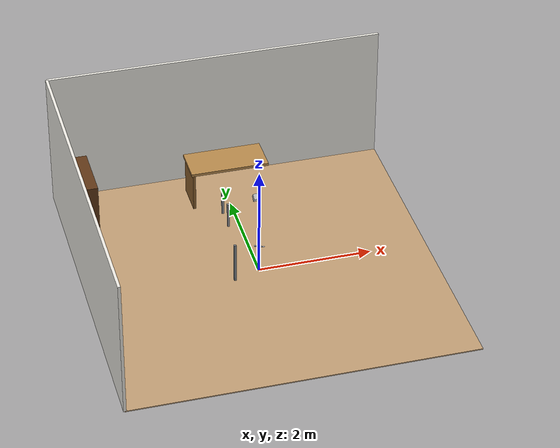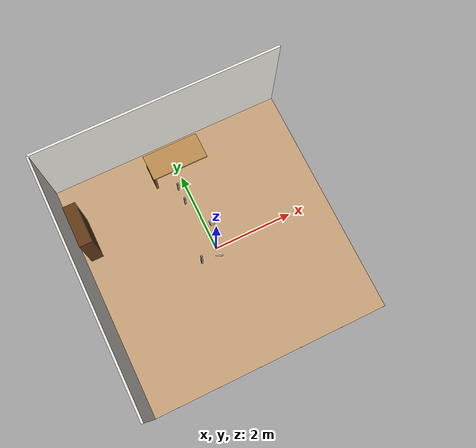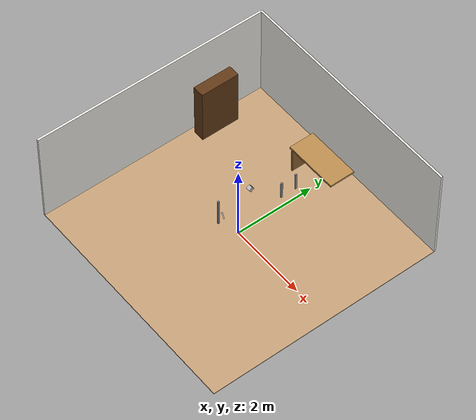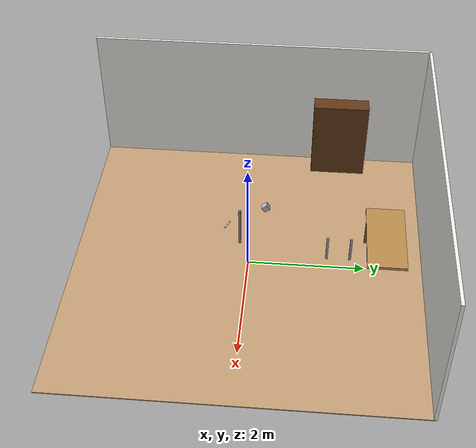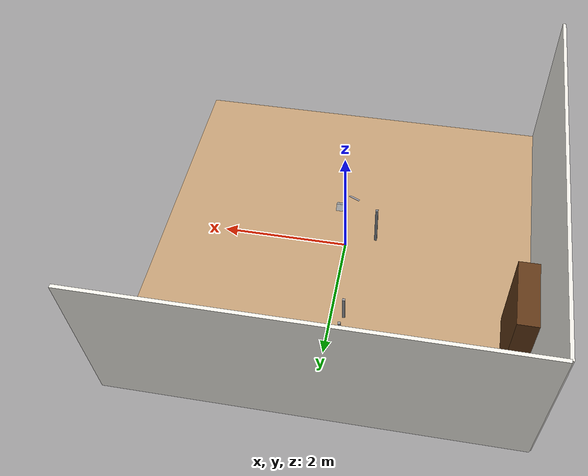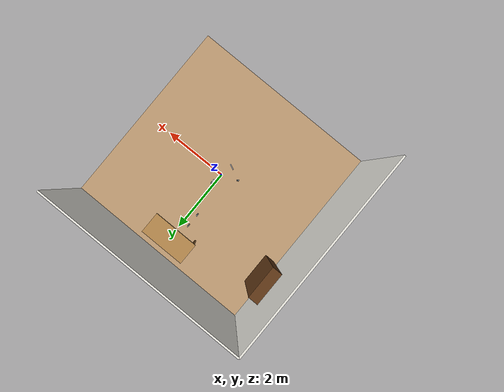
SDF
<sdf version="1.10">
 <world name="bps_room">
  <model name="floor">
   <static>true</static>
   <link name="link">
    <collision name="collision"><geometry><box><size>6 6 0.02</size></box></geometry></collision>
    <visual name="visual">
     <geometry><box><size>6 6 0.02</size></box></geometry>
     <material>
      <ambient>0.75999999 0.620000005 0.460000008 1</ambient>
      <diffuse>0.75999999 0.620000005 0.460000008 1</diffuse>
     </material>
    </visual>
    <inertial>
     <mass>1</mass>
     <inertia><ixx>1</ixx><ixy>0</ixy><ixz>0</ixz><iyy>1</iyy><iyz>0</iyz><izz>1</izz></inertia>
    </inertial>
   </link>
  </model>
  <model name="wall_north">
   <static>true</static>
   <pose>0 3 1.25 0 0 0</pose>
   <link name="link">
    <collision name="collision">
     <geometry><box><size>6 0.050000000000000003 2.5</size></box></geometry>
    </collision>
    <visual name="visual">
     <geometry><box><size>6 0.050000000000000003 2.5</size></box></geometry>
     <material>
      <ambient>0.949999988 0.939999998 0.910000026 1</ambient>
      <diffuse>0.949999988 0.939999998 0.910000026 1</diffuse>
     </material>
    </visual>
    <inertial>
     <mass>1</mass>
     <inertia><ixx>1</ixx><ixy>0</ixy><ixz>0</ixz><iyy>1</iyy><iyz>0</iyz><izz>1</izz></inertia>
    </inertial>
   </link>
  </model>
  <model name="wall_west">
   <static>true</static>
   <pose>-3 0 1.25 0 0 0</pose>
   <link name="link">
    <collision name="collision">
     <geometry><box><size>0.050000000000000003 6 2.5</size></box></geometry>
    </collision>
    <visual name="visual">
     <geometry><box><size>0.050000000000000003 6 2.5</size></box></geometry>
     <material>
      <ambient>0.930000007 0.920000017 0.889999986 1</ambient>
      <diffuse>0.930000007 0.920000017 0.889999986 1</diffuse>
     </material>
    </visual>
    <inertial>
     <mass>1</mass>
     <inertia><ixx>1</ixx><ixy>0</ixy><ixz>0</ixz><iyy>1</iyy><iyz>0</iyz><izz>1</izz></inertia>
    </inertial>
   </link>
  </model>
  <model name="bookshelf_body">
   <static>true</static>
   <pose>-2.7000000000000002 1.5 0.75 0 0 0</pose>
   <link name="link">
    <collision name="collision"><geometry><box><size>0.29999999999999999 1 1.5</size></box></geometry></collision>
    <visual name="visual">
     <geometry><box><size>0.29999999999999999 1 1.5</size></box></geometry>
     <material>
      <ambient>0.379999995 0.219999999 0.0900000036 1</ambient>
      <diffuse>0.379999995 0.219999999 0.0900000036 1</diffuse>
     </material>
    </visual>
    <inertial>
     <mass>1</mass>
     <inertia><ixx>1</ixx><ixy>0</ixy><ixz>0</ixz><iyy>1</iyy><iyz>0</iyz><izz>1</izz></inertia>
    </inertial>
   </link>
  </model>
  <model name="shelf_1">
   <static>true</static>
   <pose>-2.7000000000000002 1.5 0.40000000000000002 0 0 0</pose>
   <link name="link">
    <collision name="collision">
     <geometry><box><size>0.28000000000000003 0.94999999999999996 0.02</size></box></geometry>
    </collision>
    <visual name="visual">
     <geometry><box><size>0.28000000000000003 0.94999999999999996 0.02</size></box></geometry>
     <material>
      <ambient>0.5 0.319999993 0.140000001 1</ambient>
      <diffuse>0.5 0.319999993 0.140000001 1</diffuse>
     </material>
    </visual>
    <inertial>
     <mass>1</mass>
     <inertia><ixx>1</ixx><ixy>0</ixy><ixz>0</ixz><iyy>1</iyy><iyz>0</iyz><izz>1</izz></inertia>
    </inertial>
   </link>
  </model>
  <model name="shelf_2">
   <static>true</static>
   <pose>-2.7000000000000002 1.5 0.84999999999999998 0 0 0</pose>
   <link name="link">
    <collision name="collision">
     <geometry><box><size>0.28000000000000003 0.94999999999999996 0.02</size></box></geometry>
    </collision>
    <visual name="visual">
     <geometry><box><size>0.28000000000000003 0.94999999999999996 0.02</size></box></geometry>
     <material>
      <ambient>0.5 0.319999993 0.140000001 1</ambient>
      <diffuse>0.5 0.319999993 0.140000001 1</diffuse>
     </material>
    </visual>
    <inertial>
     <mass>1</mass>
     <inertia><ixx>1</ixx><ixy>0</ixy><ixz>0</ixz><iyy>1</iyy><iyz>0</iyz><izz>1</izz></inertia>
    </inertial>
   </link>
  </model>
  <model name="shelf_3">
   <static>true</static>
   <pose>-2.7000000000000002 1.5 1.25 0 0 0</pose>
   <link name="link">
    <collision name="collision">
     <geometry><box><size>0.28000000000000003 0.94999999999999996 0.02</size></box></geometry>
    </collision>
    <visual name="visual">
     <geometry><box><size>0.28000000000000003 0.94999999999999996 0.02</size></box></geometry>
     <material>
      <ambient>0.5 0.319999993 0.140000001 1</ambient>
      <diffuse>0.5 0.319999993 0.140000001 1</diffuse>
     </material>
    </visual>
    <inertial>
     <mass>1</mass>
     <inertia><ixx>1</ixx><ixy>0</ixy><ixz>0</ixz><iyy>1</iyy><iyz>0</iyz><izz>1</izz></inertia>
    </inertial>
   </link>
  </model>
  <model name="books_row1">
   <static>true</static>
   <pose>-2.6200000000000001 1.5 0.62 0 0 0</pose>
   <link name="link">
    <visual name="visual">
     <geometry><box><size>0.040000000000000001 0.80000000000000004 0.20000000000000001</size></box></geometry>
     <material>
      <ambient>0.779999971 0.180000007 0.180000007 1</ambient>
      <diffuse>0.779999971 0.180000007 0.180000007 1</diffuse>
     </material>
    </visual>
    <inertial>
     <mass>1</mass>
     <inertia><ixx>1</ixx><ixy>0</ixy><ixz>0</ixz><iyy>1</iyy><iyz>0</iyz><izz>1</izz></inertia>
    </inertial>
   </link>
  </model>
  <model name="books_row2">
   <static>true</static>
   <pose>-2.6200000000000001 1.5 1.0600000000000001 0 0 0</pose>
   <link name="link">
    <visual name="visual">
     <geometry><box><size>0.040000000000000001 0.69999999999999996 0.17999999999999999</size></box></geometry>
     <material>
      <ambient>0.180000007 0.319999993 0.720000029 1</ambient>
      <diffuse>0.180000007 0.319999993 0.720000029 1</diffuse>
     </material>
    </visual>
    <inertial>
     <mass>1</mass>
     <inertia><ixx>1</ixx><ixy>0</ixy><ixz>0</ixz><iyy>1</iyy><iyz>0</iyz><izz>1</izz></inertia>
    </inertial>
   </link>
  </model>
  <model name="desk">
   <static>true</static>
   <pose>0 2.2999999999999998 0.75 0 0 0</pose>
   <link name="link">
    <collision name="collision">
     <geometry><box><size>1.3999999999999999 0.65000000000000002 0.050000000000000003</size></box></geometry>
    </collision>
    <visual name="visual">
     <geometry><box><size>1.3999999999999999 0.65000000000000002 0.050000000000000003</size></box></geometry>
     <material>
      <ambient>0.720000029 0.540000021 0.300000012 1</ambient>
      <diffuse>0.720000029 0.540000021 0.300000012 1</diffuse>
     </material>
    </visual>
    <inertial>
     <mass>1</mass>
     <inertia><ixx>1</ixx><ixy>0</ixy><ixz>0</ixz><iyy>1</iyy><iyz>0</iyz><izz>1</izz></inertia>
    </inertial>
   </link>
  </model>
  <model name="desk_leg_left">
   <static>true</static>
   <pose>-0.65000000000000002 2.2999999999999998 0.375 0 0 0</pose>
   <link name="link">
    <collision name="collision">
     <geometry><box><size>0.050000000000000003 0.59999999999999998 0.75</size></box></geometry>
    </collision>
    <visual name="visual">
     <geometry><box><size>0.050000000000000003 0.59999999999999998 0.75</size></box></geometry>
     <material>
      <ambient>0.550000012 0.379999995 0.180000007 1</ambient>
      <diffuse>0.550000012 0.379999995 0.180000007 1</diffuse>
     </material>
    </visual>
    <inertial>
     <mass>1</mass>
     <inertia><ixx>1</ixx><ixy>0</ixy><ixz>0</ixz><iyy>1</iyy><iyz>0</iyz><izz>1</izz></inertia>
    </inertial>
   </link>
  </model>
  <model name="chair_leg_fl">
   <static>true</static>
   <pose>-0.20000000000000001 1.3500000000000001 0.23999999999999999 0 0 0</pose>
   <link name="link">
    <collision name="collision">
     <geometry><box><size>0.040000000000000001 0.040000000000000001 0.47999999999999998</size></box></geometry>
    </collision>
    <visual name="visual">
     <geometry><box><size>0.040000000000000001 0.040000000000000001 0.47999999999999998</size></box></geometry>
     <material>
      <ambient>0.600000024 0.600000024 0.620000005 1</ambient>
      <diffuse>0.600000024 0.600000024 0.620000005 1</diffuse>
     </material>
    </visual>
    <inertial>
     <mass>1</mass>
     <inertia><ixx>1</ixx><ixy>0</ixy><ixz>0</ixz><iyy>1</iyy><iyz>0</iyz><izz>1</izz></inertia>
    </inertial>
   </link>
  </model>
  <model name="chair_leg_bl">
   <static>true</static>
   <pose>-0.20000000000000001 1.75 0.23999999999999999 0 0 0</pose>
   <link name="link">
    <collision name="collision">
     <geometry><box><size>0.040000000000000001 0.040000000000000001 0.47999999999999998</size></box></geometry>
    </collision>
    <visual name="visual">
     <geometry><box><size>0.040000000000000001 0.040000000000000001 0.47999999999999998</size></box></geometry>
     <material>
      <ambient>0.600000024 0.600000024 0.620000005 1</ambient>
      <diffuse>0.600000024 0.600000024 0.620000005 1</diffuse>
     </material>
    </visual>
    <inertial>
     <mass>1</mass>
     <inertia><ixx>1</ixx><ixy>0</ixy><ixz>0</ixz><iyy>1</iyy><iyz>0</iyz><izz>1</izz></inertia>
    </inertial>
   </link>
  </model>
  <model name="table_leg_bl">
   <static>true</static>
   <pose>-0.46999999999999997 -0.17999999999999999 0.375 0 0 0</pose>
   <link name="link">
    <collision name="collision">
     <geometry><box><size>0.040000000000000001 0.040000000000000001 0.75</size></box></geometry>
    </collision>
    <visual name="visual">
     <geometry><box><size>0.040000000000000001 0.040000000000000001 0.75</size></box></geometry>
     <material>
      <ambient>0.5 0.519999981 0.540000021 1</ambient>
      <diffuse>0.5 0.519999981 0.540000021 1</diffuse>
     </material>
    </visual>
    <inertial>
     <mass>1</mass>
     <inertia><ixx>1</ixx><ixy>0</ixy><ixz>0</ixz><iyy>1</iyy><iyz>0</iyz><izz>1</izz></inertia>
    </inertial>
   </link>
  </model>
  <model name="obj_spoon">
   <static>false</static>
   <pose>-0.089999999999999997 -0.34999999999999998 0.77800000000000002 0 0 -0.39999999999999997</pose>
   <link name="link">
    <collision name="collision">
     <geometry><box><size>0.17999999999999999 0.025000000000000001 0.0060000000000000001</size></box></geometry>
    </collision>
    <visual name="visual">
     <geometry><box><size>0.17999999999999999 0.025000000000000001 0.0060000000000000001</size></box></geometry>
     <material>
      <ambient>0.720000029 0.720000029 0.75999999 1</ambient>
      <diffuse>0.720000029 0.720000029 0.75999999 1</diffuse>
      <specular>0.600000024 0.600000024 0.600000024 1</specular>
     </material>
     <plugin name="gz::sim::systems::Label" filename="gz-sim-label-system"><label>10</label></plugin>
    </visual>
    <inertial>
     <mass>1</mass>
     <inertia><ixx>1</ixx><ixy>0</ixy><ixz>0</ixz><iyy>1</iyy><iyz>0</iyz><izz>1</izz></inertia>
    </inertial>
    <sensor name="obj_spoon_contact_sensor" type="contact">
     <contact><collision>collision</collision></contact>
     <update_rate>30</update_rate>
     <always_on>true</always_on>
    </sensor>
   </link>
  </model>
  <model name="depth_camera_v3">
   <static>true</static>
   <pose>-0.02474666666666662 0.36810537762232515 1.305276436351046 -0.0 0.6108652381980154 -1.5707963267948968</pose>
   <link name="link">
    <pose>0.050000000000000003 0.050000000000000003 0.050000000000000003 0 0 0</pose>
    <inertial>
     <mass>0.10000000000000001</mass>
     <inertia>
      <ixx>0.00016666700000000001</ixx>
      <iyy>0.00016666700000000001</iyy>
      <izz>0.00016666700000000001</izz>
      <ixy>0</ixy>
      <ixz>0</ixz>
      <iyz>0</iyz>
     </inertia>
    </inertial>
    <collision name="collision">
     <geometry><box><size>0.10000000000000001 0.10000000000000001 0.10000000000000001</size></box></geometry>
    </collision>
    <visual name="visual">
     <geometry><box><size>0.10000000000000001 0.10000000000000001 0.10000000000000001</size></box></geometry>
    </visual>
    <sensor name="depth_camera3" type="depth_camera">
     <topic>depth_camera_v3</topic>
     <update_rate>10</update_rate>
     <enable_metrics>false</enable_metrics>
     <camera>
      <horizontal_fov>1.2</horizontal_fov>
      <image>
       <width>640</width>
       <height>480</height>
       <format>R_FLOAT32</format>
       <anti_aliasing>4</anti_aliasing>
      </image>
      <camera_info_topic>__default__</camera_info_topic>
      <triggered>false</triggered>
      <clip><near>0.10000000000000001</near><far>2</far></clip>
      <save enabled="false"><path>__default__</path></save>
      <visibility_mask>4294967295</visibility_mask>
      <noise><type>none</type><mean>0</mean><stddev>0</stddev></noise>
      <distortion><k1>0</k1><k2>0</k2><k3>0</k3><p1>0</p1><p2>0</p2><center>0.5 0.5</center></distortion>
      <lens>
       <type>stereographic</type>
       <scale_to_hfov>true</scale_to_hfov>
       <cutoff_angle>1.5707963267948966</cutoff_angle>
       <env_texture_size>256</env_texture_size>
      </lens>
     </camera>
    </sensor>
    <sensor name="rgb_camera3" type="camera">
     <topic>rgb_camera_v3</topic>
     <update_rate>10</update_rate>
     <enable_metrics>false</enable_metrics>
     <camera>
      <horizontal_fov>1.2</horizontal_fov>
      <image><width>640</width><height>480</height><format>RGB_INT8</format><anti_aliasing>4</anti_aliasing></image>
      <camera_info_topic>__default__</camera_info_topic>
      <triggered>false</triggered>
      <clip><near>0.10000000000000001</near><far>2</far></clip>
      <save enabled="false"><path>__default__</path></save>
      <visibility_mask>4294967295</visibility_mask>
      <noise><type>none</type><mean>0</mean><stddev>0</stddev></noise>
      <distortion><k1>0</k1><k2>0</k2><k3>0</k3><p1>0</p1><p2>0</p2><center>0.5 0.5</center></distortion>
      <lens>
       <type>stereographic</type>
       <scale_to_hfov>true</scale_to_hfov>
       <cutoff_angle>1.5707963267948966</cutoff_angle>
       <env_texture_size>256</env_texture_size>
      </lens>
     </camera>
    </sensor>
    <sensor name="semantic_camera3" type="segmentation_camera">
     <topic>semantic_camera_v3</topic>
     <update_rate>10</update_rate>
     <enable_metrics>false</enable_metrics>
     <camera>
      <horizontal_fov>1.2</horizontal_fov>
      <image><width>640</width><height>480</height></image>
      <clip><near>0.1</near><far>100</far></clip>
      <segmentation_type>semantic</segmentation_type>
     </camera>
    </sensor>
   </link>
  </model>
 </world>
</sdf>
